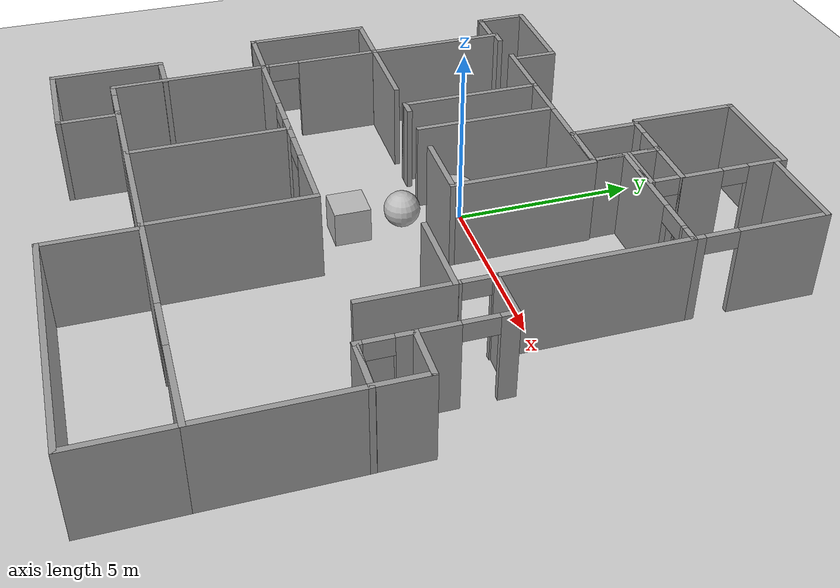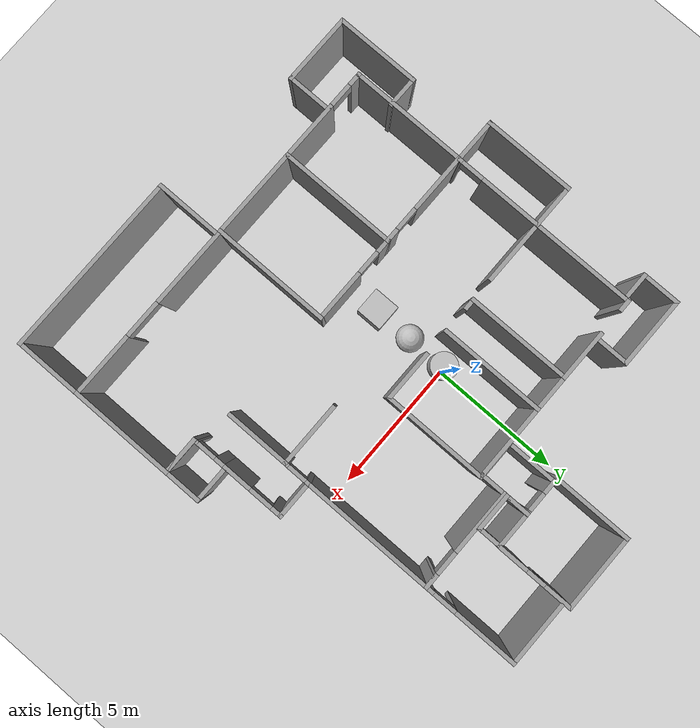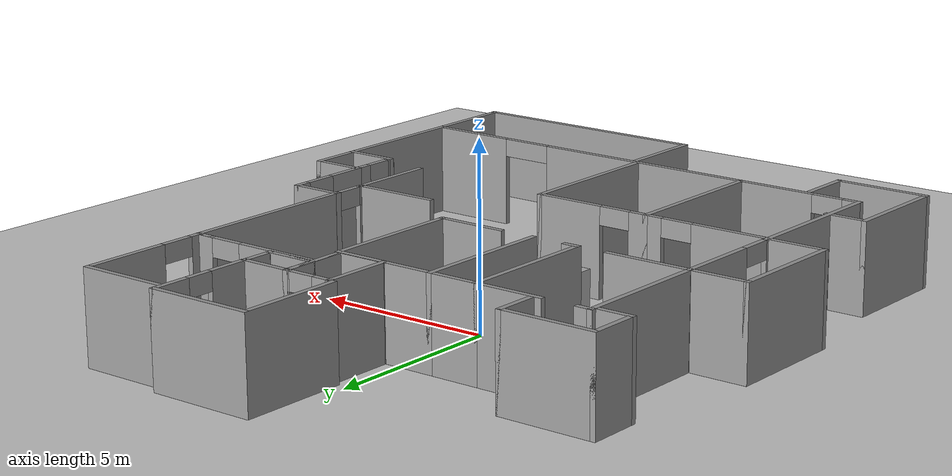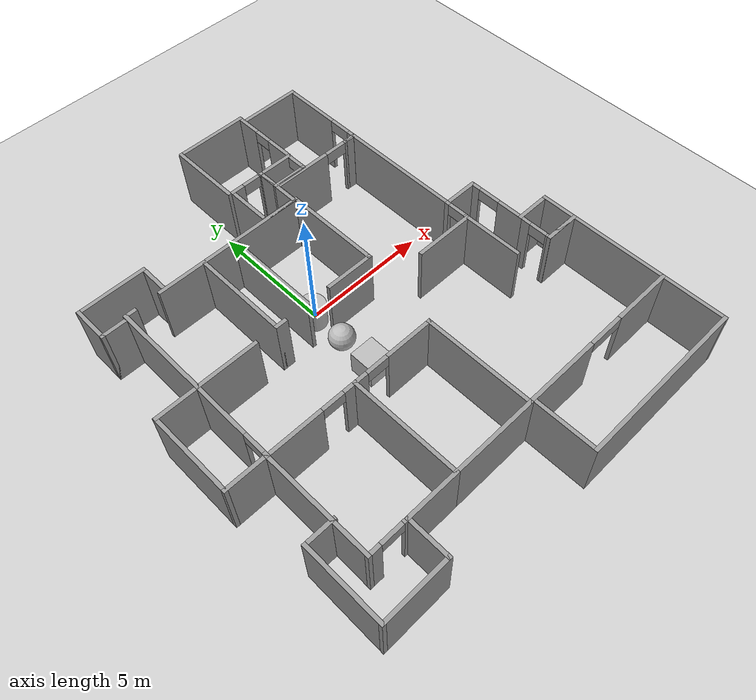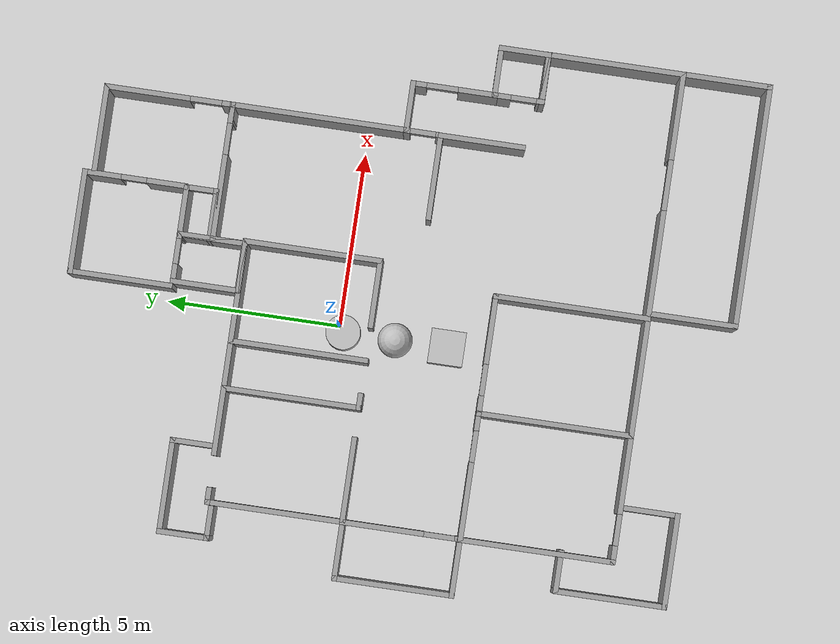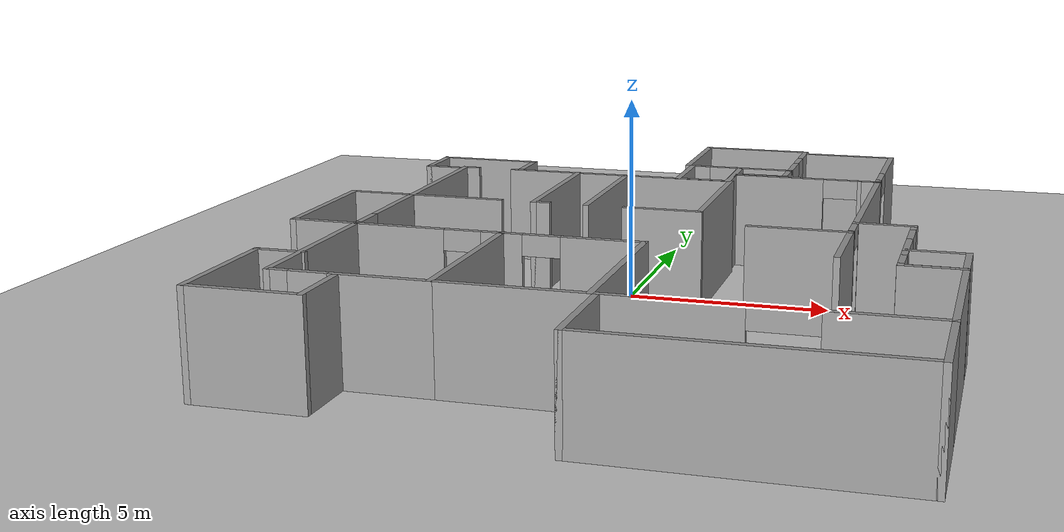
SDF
<sdf version="1.6">
 <world name="default">
  <light name="sun" type="directional">
   <pose>0 0 10 0 -0 0</pose>
   <diffuse>0.8 0.8 0.8 1</diffuse>
   <specular>0.1 0.1 0.1 1</specular>
   <attenuation>
    <range>1000</range>
    <constant>0.9</constant>
    <linear>0.01</linear>
    <quadratic>0.001</quadratic>
   </attenuation>
   <direction>-0.5 0.5 -1</direction>
  </light>
  <model name="ground_plane">
   <static>1</static>
   <link name="link">
    <collision name="collision">
     <geometry><plane><normal>0 0 1</normal><size>100 100</size></plane></geometry>
     <surface><friction><ode><mu>100</mu><mu2>50</mu2></ode></friction></surface>
    </collision>
    <visual name="visual">
     <cast_shadows>0</cast_shadows>
     <geometry><plane><normal>0 0 1</normal><size>100 100</size></plane></geometry>
     <material>
      <script><uri>file://media/materials/scripts/gazebo.material</uri><name>Gazebo/Grey</name></script>
     </material>
    </visual>
   </link>
  </model>
  <gravity>0 0 -9.8</gravity>
  <magnetic_field>6e-06 2.3e-05 -4.2e-05</magnetic_field>
  <atmosphere type="adiabatic"/>
  <physics name="default_physics" default="0" type="ode">
   <max_step_size>0.001</max_step_size>
   <real_time_factor>1</real_time_factor>
   <real_time_update_rate>1000</real_time_update_rate>
  </physics>
  <scene><ambient>0.4 0.4 0.4 1</ambient><background>0.7 0.7 0.7 1</background><shadows>1</shadows></scene>
  <spherical_coordinates>
   <surface_model>EARTH_WGS84</surface_model>
   <latitude_deg>0</latitude_deg>
   <longitude_deg>0</longitude_deg>
   <elevation>0</elevation>
   <heading_deg>0</heading_deg>
  </spherical_coordinates>
  <model name="cma_escritorio">
   <pose>-1.79682 1.02121 0 0 -0 0</pose>
   <link name="Wall_11">
    <collision name="Wall_11_Collision">
     <geometry><box><size>2 0.15 2.5</size></box></geometry>
     <pose>0 0 1.25 0 -0 0</pose>
    </collision>
    <visual name="Wall_11_Visual">
     <pose>0 0 1.25 0 -0 0</pose>
     <geometry><box><size>2 0.15 2.5</size></box></geometry>
     <material>
      <script><uri>file://media/materials/scripts/gazebo.material</uri><name>Gazebo/Grey</name></script>
      <ambient>1 1 1 1</ambient>
     </material>
    </visual>
    <pose>-1.4 1.93 0 0 -0 3.14159</pose>
   </link>
   <link name="Wall_2">
    <collision name="Wall_2_Collision">
     <geometry><box><size>4 0.15 2.5</size></box></geometry>
     <pose>0 0 1.25 0 -0 0</pose>
    </collision>
    <visual name="Wall_2_Visual">
     <pose>0 0 1.25 0 -0 0</pose>
     <geometry><box><size>4 0.15 2.5</size></box></geometry>
     <material>
      <script><uri>file://media/materials/scripts/gazebo.material</uri><name>Gazebo/Grey</name></script>
      <ambient>1 1 1 1</ambient>
     </material>
    </visual>
    <pose>0.875 0.005 0 0 -0 1.5708</pose>
   </link>
   <link name="Wall_25">
    <collision name="Wall_25_Collision">
     <geometry><box><size>2.5 0.15 2.5</size></box></geometry>
     <pose>0 0 1.25 0 -0 0</pose>
    </collision>
    <visual name="Wall_25_Visual">
     <pose>0 0 1.25 0 -0 0</pose>
     <geometry><box><size>2.5 0.15 2.5</size></box></geometry>
     <material>
      <script><uri>file://media/materials/scripts/gazebo.material</uri><name>Gazebo/Grey</name></script>
      <ambient>1 1 1 1</ambient>
     </material>
    </visual>
    <pose>-2.55 -1.93 0 0 -0 3.14159</pose>
   </link>
   <link name="Wall_26">
    <collision name="Wall_26_Collision">
     <geometry><box><size>4 0.15 2.5</size></box></geometry>
     <pose>0 0 1.25 0 -0 0</pose>
    </collision>
    <visual name="Wall_26_Visual">
     <pose>0 0 1.25 0 -0 0</pose>
     <geometry><box><size>4 0.15 2.5</size></box></geometry>
     <material>
      <script><uri>file://media/materials/scripts/gazebo.material</uri><name>Gazebo/Grey</name></script>
      <ambient>1 1 1 1</ambient>
     </material>
    </visual>
    <pose>-3.725 -0.005 0 0 -0 1.5708</pose>
   </link>
   <link name="Wall_27">
    <collision name="Wall_27_Collision">
     <geometry><box><size>0.5 0.15 2.5</size></box></geometry>
     <pose>0 0 1.25 0 -0 0</pose>
    </collision>
    <visual name="Wall_27_Visual">
     <pose>0 0 1.25 0 -0 0</pose>
     <geometry><box><size>0.5 0.15 2.5</size></box></geometry>
     <material>
      <script><uri>file://media/materials/scripts/gazebo.material</uri><name>Gazebo/Grey</name></script>
      <ambient>1 1 1 1</ambient>
     </material>
    </visual>
    <pose>-3.55 1.92 0 0 -0 0</pose>
   </link>
   <link name="Wall_3">
    <collision name="Wall_3_Collision">
     <geometry><box><size>3 0.15 2.5</size></box></geometry>
     <pose>0 0 1.25 0 -0 0</pose>
    </collision>
    <visual name="Wall_3_Visual">
     <pose>0 0 1.25 0 -0 0</pose>
     <geometry><box><size>3 0.15 2.5</size></box></geometry>
     <material>
      <script><uri>file://media/materials/scripts/gazebo.material</uri><name>Gazebo/Grey</name></script>
      <ambient>1 1 1 1</ambient>
     </material>
    </visual>
    <pose>2.3 1.93 0 0 -0 0</pose>
   </link>
   <link name="Wall_4">
    <collision name="Wall_4_Collision">
     <geometry><box><size>4 0.15 2.5</size></box></geometry>
     <pose>0 0 1.25 0 -0 0</pose>
    </collision>
    <visual name="Wall_4_Visual">
     <pose>0 0 1.25 0 -0 0</pose>
     <geometry><box><size>4 0.15 2.5</size></box></geometry>
     <material>
      <script><uri>file://media/materials/scripts/gazebo.material</uri><name>Gazebo/Grey</name></script>
      <ambient>1 1 1 1</ambient>
     </material>
    </visual>
    <pose>3.725 0.005 0 0 0 -1.5708</pose>
   </link>
   <link name="Wall_5">
    <collision name="Wall_5_Collision">
     <geometry><box><size>2 0.15 2.5</size></box></geometry>
     <pose>0 0 1.25 0 -0 0</pose>
    </collision>
    <visual name="Wall_5_Visual">
     <pose>0 0 1.25 0 -0 0</pose>
     <geometry><box><size>2 0.15 2.5</size></box></geometry>
     <material>
      <script><uri>file://media/materials/scripts/gazebo.material</uri><name>Gazebo/Grey</name></script>
      <ambient>1 1 1 1</ambient>
     </material>
    </visual>
    <pose>2.8 -1.92 0 0 -0 3.14159</pose>
   </link>
   <link name="Wall_7">
    <collision name="Wall_7_Collision">
     <geometry><box><size>1.5 0.15 2.5</size></box></geometry>
     <pose>0 0 1.25 0 -0 0</pose>
    </collision>
    <visual name="Wall_7_Visual">
     <pose>0 0 1.25 0 -0 0</pose>
     <geometry><box><size>1.5 0.15 2.5</size></box></geometry>
     <material>
      <script><uri>file://media/materials/scripts/gazebo.material</uri><name>Gazebo/Grey</name></script>
      <ambient>1 1 1 1</ambient>
     </material>
    </visual>
    <pose>0.2 1.93 0 0 -0 3.14159</pose>
   </link>
   <link name="Wall_8">
    <collision name="Wall_8_Collision">
     <geometry><box><size>4 0.15 2.5</size></box></geometry>
     <pose>0 0 1.25 0 -0 0</pose>
    </collision>
    <visual name="Wall_8_Visual">
     <pose>0 0 1.25 0 -0 0</pose>
     <geometry><box><size>4 0.15 2.5</size></box></geometry>
     <material>
      <script><uri>file://media/materials/scripts/gazebo.material</uri><name>Gazebo/Grey</name></script>
      <ambient>1 1 1 1</ambient>
     </material>
    </visual>
    <pose>-0.475 0.005 0 0 0 -1.5708</pose>
   </link>
   <link name="Wall_9">
    <collision name="Wall_9_Collision">
     <geometry><box><size>0.5 0.15 2.5</size></box></geometry>
     <pose>0 0 1.25 0 -0 0</pose>
    </collision>
    <visual name="Wall_9_Visual">
     <pose>0 0 1.25 0 -0 0</pose>
     <geometry><box><size>0.5 0.15 2.5</size></box></geometry>
     <material>
      <script><uri>file://media/materials/scripts/gazebo.material</uri><name>Gazebo/Grey</name></script>
      <ambient>1 1 1 1</ambient>
     </material>
    </visual>
    <pose>-0.3 -1.92 0 0 -0 0</pose>
   </link>
   <static>1</static>
  </model>
  <model name="cma_banheiro">
   <pose>-5.22928 3.4871 0 0 -0 0</pose>
   <link name="Wall_0">
    <collision name="Wall_0_Collision">
     <geometry><box><size>1 0.15 2.5</size></box></geometry>
     <pose>0 0 1.25 0 -0 0</pose>
    </collision>
    <visual name="Wall_0_Visual">
     <pose>0 0 1.25 0 -0 0</pose>
     <geometry><box><size>1 0.15 2.5</size></box></geometry>
     <material>
      <script><uri>file://media/materials/scripts/gazebo.material</uri><name>Gazebo/Grey</name></script>
      <ambient>1 1 1 1</ambient>
     </material>
    </visual>
    <pose>-0.875 -0.675 0 0 -0 3.14159</pose>
   </link>
   <link name="Wall_1">
    <collision name="Wall_1_Collision">
     <geometry><box><size>1.5 0.15 2.5</size></box></geometry>
     <pose>0 0 1.25 0 -0 0</pose>
    </collision>
    <visual name="Wall_1_Visual">
     <pose>0 0 1.25 0 -0 0</pose>
     <geometry><box><size>1.5 0.15 2.5</size></box></geometry>
     <material>
      <script><uri>file://media/materials/scripts/gazebo.material</uri><name>Gazebo/Grey</name></script>
      <ambient>1 1 1 1</ambient>
     </material>
    </visual>
    <pose>-1.3 0 0 0 -0 1.5708</pose>
   </link>
   <link name="Wall_2">
    <collision name="Wall_2_Collision">
     <geometry><box><size>2.75 0.15 2.5</size></box></geometry>
     <pose>0 0 1.25 0 -0 0</pose>
    </collision>
    <visual name="Wall_2_Visual">
     <pose>0 0 1.25 0 -0 0</pose>
     <geometry><box><size>2.75 0.15 2.5</size></box></geometry>
     <material>
      <script><uri>file://media/materials/scripts/gazebo.material</uri><name>Gazebo/Grey</name></script>
      <ambient>1 1 1 1</ambient>
     </material>
    </visual>
    <pose>0 0.675 0 0 -0 0</pose>
   </link>
   <link name="Wall_4">
    <collision name="Wall_4_Collision">
     <geometry><box><size>1.25 0.15 2.5</size></box></geometry>
     <pose>0 0 1.25 0 -0 0</pose>
    </collision>
    <visual name="Wall_4_Visual">
     <pose>0 0 1.25 0 -0 0</pose>
     <geometry><box><size>1.25 0.15 2.5</size></box></geometry>
     <material>
      <script><uri>file://media/materials/scripts/gazebo.material</uri><name>Gazebo/Grey</name></script>
      <ambient>1 1 1 1</ambient>
     </material>
    </visual>
    <pose>1.3 0.125 0 0 0 -1.5708</pose>
   </link>
   <static>1</static>
  </model>
  <model name="cma_varanda1">
   <pose>-6.32518 -2.59313 0 0 -0 0</pose>
   <link name="Wall_0">
    <pose>0.8 0 0 0 0 -1.5708</pose>
    <visual name="Wall_0_Visual_0">
     <pose>-0.5525 0 1.25 0 -0 0</pose>
     <geometry><box><size>2.395 0.15 2.5</size></box></geometry>
     <material>
      <script><uri>file://media/materials/scripts/gazebo.material</uri><name>Gazebo/Grey</name></script>
      <ambient>1 1 1 1</ambient>
     </material>
    </visual>
    <collision name="Wall_0_Collision_0">
     <geometry><box><size>2.395 0.15 2.5</size></box></geometry>
     <pose>-0.5525 0 1.25 0 -0 0</pose>
    </collision>
    <visual name="Wall_0_Visual_1">
     <pose>1.6375 0 1.25 0 -0 0</pose>
     <geometry><box><size>0.225 0.15 2.5</size></box></geometry>
     <material>
      <script><uri>file://media/materials/scripts/gazebo.material</uri><name>Gazebo/Grey</name></script>
      <ambient>1 1 1 1</ambient>
     </material>
    </visual>
    <collision name="Wall_0_Collision_1">
     <geometry><box><size>0.225 0.15 2.5</size></box></geometry>
     <pose>1.6375 0 1.25 0 -0 0</pose>
    </collision>
    <visual name="Wall_0_Visual_2">
     <pose>1.085 0 2.25 0 -0 0</pose>
     <geometry><box><size>0.88 0.15 0.5</size></box></geometry>
     <material>
      <script><uri>file://media/materials/scripts/gazebo.material</uri><name>Gazebo/Grey</name></script>
      <ambient>1 1 1 1</ambient>
     </material>
    </visual>
    <collision name="Wall_0_Collision_2">
     <geometry><box><size>0.88 0.15 0.5</size></box></geometry>
     <pose>1.085 0 2.25 0 -0 0</pose>
    </collision>
   </link>
   <link name="Wall_1">
    <collision name="Wall_1_Collision">
     <geometry><box><size>1.75 0.15 2.5</size></box></geometry>
     <pose>0 0 1.25 0 -0 0</pose>
    </collision>
    <visual name="Wall_1_Visual">
     <pose>0 0 1.25 0 -0 0</pose>
     <geometry><box><size>1.75 0.15 2.5</size></box></geometry>
     <material>
      <script><uri>file://media/materials/scripts/gazebo.material</uri><name>Gazebo/Grey</name></script>
      <ambient>1 1 1 1</ambient>
     </material>
    </visual>
    <pose>0 -1.675 0 0 -0 3.14159</pose>
   </link>
   <link name="Wall_2">
    <collision name="Wall_2_Collision">
     <geometry><box><size>3.5 0.15 2.5</size></box></geometry>
     <pose>0 0 1.25 0 -0 0</pose>
    </collision>
    <visual name="Wall_2_Visual">
     <pose>0 0 1.25 0 -0 0</pose>
     <geometry><box><size>3.5 0.15 2.5</size></box></geometry>
     <material>
      <script><uri>file://media/materials/scripts/gazebo.material</uri><name>Gazebo/Grey</name></script>
      <ambient>1 1 1 1</ambient>
     </material>
    </visual>
    <pose>-0.8 0 0 0 -0 1.5708</pose>
   </link>
   <link name="Wall_3">
    <collision name="Wall_3_Collision">
     <geometry><box><size>1.75 0.15 2.5</size></box></geometry>
     <pose>0 0 1.25 0 -0 0</pose>
    </collision>
    <visual name="Wall_3_Visual">
     <pose>0 0 1.25 0 -0 0</pose>
     <geometry><box><size>1.75 0.15 2.5</size></box></geometry>
     <material>
      <script><uri>file://media/materials/scripts/gazebo.material</uri><name>Gazebo/Grey</name></script>
      <ambient>1 1 1 1</ambient>
     </material>
    </visual>
    <pose>0 1.675 0 0 -0 0</pose>
   </link>
   <static>1</static>
  </model>
  <model name="cma_quartos">
   <pose>-2.58169 -7.26456 0 0 -0 0</pose>
   <link name="Wall_0">
    <collision name="Wall_0_Collision">
     <geometry><box><size>4.5 0.15 2.5</size></box></geometry>
     <pose>0 0 1.25 0 -0 0</pose>
    </collision>
    <visual name="Wall_0_Visual">
     <pose>0 0 1.25 0 -0 0</pose>
     <geometry><box><size>4.5 0.15 2.5</size></box></geometry>
     <material>
      <script><uri>file://media/materials/scripts/gazebo.material</uri><name>Gazebo/Grey</name></script>
      <ambient>1 1 1 1</ambient>
     </material>
    </visual>
    <pose>0.645 0.81 0 0 0 -1.5708</pose>
   </link>
   <link name="Wall_1">
    <pose>-1.155 -1.365 0 0 -0 3.14159</pose>
    <visual name="Wall_1_Visual_0">
     <pose>-0.7225 0 1.25 0 -0 0</pose>
     <geometry><box><size>2.305 0.15 2.5</size></box></geometry>
     <material>
      <script><uri>file://media/materials/scripts/gazebo.material</uri><name>Gazebo/Grey</name></script>
      <ambient>1 1 1 1</ambient>
     </material>
    </visual>
    <collision name="Wall_1_Collision_0">
     <geometry><box><size>2.305 0.15 2.5</size></box></geometry>
     <pose>-0.7225 0 1.25 0 -0 0</pose>
    </collision>
    <visual name="Wall_1_Visual_1">
     <pose>1.6025 0 1.25 0 -0 0</pose>
     <geometry><box><size>0.545 0.15 2.5</size></box></geometry>
     <material>
      <script><uri>file://media/materials/scripts/gazebo.material</uri><name>Gazebo/Grey</name></script>
      <ambient>1 1 1 1</ambient>
     </material>
    </visual>
    <collision name="Wall_1_Collision_1">
     <geometry><box><size>0.545 0.15 2.5</size></box></geometry>
     <pose>1.6025 0 1.25 0 -0 0</pose>
    </collision>
    <visual name="Wall_1_Visual_2">
     <pose>0.88 0 2.25 0 -0 0</pose>
     <geometry><box><size>0.9 0.15 0.5</size></box></geometry>
     <material>
      <script><uri>file://media/materials/scripts/gazebo.material</uri><name>Gazebo/Grey</name></script>
      <ambient>1 1 1 1</ambient>
     </material>
    </visual>
    <collision name="Wall_1_Collision_2">
     <geometry><box><size>0.9 0.15 0.5</size></box></geometry>
     <pose>0.88 0 2.25 0 -0 0</pose>
    </collision>
   </link>
   <link name="Wall_10">
    <collision name="Wall_10_Collision">
     <geometry><box><size>1.75 0.15 2.5</size></box></geometry>
     <pose>0 0 1.25 0 -0 0</pose>
    </collision>
    <visual name="Wall_10_Visual">
     <pose>0 0 1.25 0 -0 0</pose>
     <geometry><box><size>1.75 0.15 2.5</size></box></geometry>
     <material>
      <script><uri>file://media/materials/scripts/gazebo.material</uri><name>Gazebo/Grey</name></script>
      <ambient>1 1 1 1</ambient>
     </material>
    </visual>
    <pose>-1.395 -2.185 0 0 0 -1.5708</pose>
   </link>
   <link name="Wall_11">
    <collision name="Wall_11_Collision">
     <geometry><box><size>2.75 0.15 2.5</size></box></geometry>
     <pose>0 0 1.25 0 -0 0</pose>
    </collision>
    <visual name="Wall_11_Visual">
     <pose>0 0 1.25 0 -0 0</pose>
     <geometry><box><size>2.75 0.15 2.5</size></box></geometry>
     <material>
      <script><uri>file://media/materials/scripts/gazebo.material</uri><name>Gazebo/Grey</name></script>
      <ambient>1 1 1 1</ambient>
     </material>
    </visual>
    <pose>-2.695 -2.985 0 0 -0 3.14159</pose>
   </link>
   <link name="Wall_12">
    <collision name="Wall_12_Collision">
     <geometry><box><size>3.25 0.15 2.5</size></box></geometry>
     <pose>0 0 1.25 0 -0 0</pose>
    </collision>
    <visual name="Wall_12_Visual">
     <pose>0 0 1.25 0 -0 0</pose>
     <geometry><box><size>3.25 0.15 2.5</size></box></geometry>
     <material>
      <script><uri>file://media/materials/scripts/gazebo.material</uri><name>Gazebo/Grey</name></script>
      <ambient>1 1 1 1</ambient>
     </material>
    </visual>
    <pose>-3.995 -1.435 0 0 -0 1.5708</pose>
   </link>
   <link name="Wall_13">
    <collision name="Wall_13_Collision">
     <geometry><box><size>1.25 0.15 2.5</size></box></geometry>
     <pose>0 0 1.25 0 -0 0</pose>
    </collision>
    <visual name="Wall_13_Visual">
     <pose>0 0 1.25 0 -0 0</pose>
     <geometry><box><size>1.25 0.15 2.5</size></box></geometry>
     <material>
      <script><uri>file://media/materials/scripts/gazebo.material</uri><name>Gazebo/Grey</name></script>
      <ambient>1 1 1 1</ambient>
     </material>
    </visual>
    <pose>-3.445 0.115 0 0 -0 0</pose>
   </link>
   <link name="Wall_2">
    <collision name="Wall_2_Collision">
     <geometry><box><size>4.5 0.15 2.5</size></box></geometry>
     <pose>0 0 1.25 0 -0 0</pose>
    </collision>
    <visual name="Wall_2_Visual">
     <pose>0 0 1.25 0 -0 0</pose>
     <geometry><box><size>4.5 0.15 2.5</size></box></geometry>
     <material>
      <script><uri>file://media/materials/scripts/gazebo.material</uri><name>Gazebo/Grey</name></script>
      <ambient>1 1 1 1</ambient>
     </material>
    </visual>
    <pose>-2.955 0.81 0 0 -0 1.5708</pose>
   </link>
   <link name="Wall_3">
    <pose>-1.155 2.985 0 0 -0 0</pose>
    <visual name="Wall_3_Visual_0">
     <pose>-0.7325 0 1.25 0 -0 0</pose>
     <geometry><box><size>2.285 0.15 2.5</size></box></geometry>
     <material>
      <script><uri>file://media/materials/scripts/gazebo.material</uri><name>Gazebo/Grey</name></script>
      <ambient>1 1 1 1</ambient>
     </material>
    </visual>
    <collision name="Wall_3_Collision_0">
     <geometry><box><size>2.285 0.15 2.5</size></box></geometry>
     <pose>-0.7325 0 1.25 0 -0 0</pose>
    </collision>
    <visual name="Wall_3_Visual_1">
     <pose>1.5925 0 1.25 0 -0 0</pose>
     <geometry><box><size>0.565 0.15 2.5</size></box></geometry>
     <material>
      <script><uri>file://media/materials/scripts/gazebo.material</uri><name>Gazebo/Grey</name></script>
      <ambient>1 1 1 1</ambient>
     </material>
    </visual>
    <collision name="Wall_3_Collision_1">
     <geometry><box><size>0.565 0.15 2.5</size></box></geometry>
     <pose>1.5925 0 1.25 0 -0 0</pose>
    </collision>
    <visual name="Wall_3_Visual_2">
     <pose>0.86 0 2.25 0 -0 0</pose>
     <geometry><box><size>0.9 0.15 0.5</size></box></geometry>
     <material>
      <script><uri>file://media/materials/scripts/gazebo.material</uri><name>Gazebo/Grey</name></script>
      <ambient>1 1 1 1</ambient>
     </material>
    </visual>
    <collision name="Wall_3_Collision_2">
     <geometry><box><size>0.9 0.15 0.5</size></box></geometry>
     <pose>0.86 0 2.25 0 -0 0</pose>
    </collision>
   </link>
   <link name="Wall_6">
    <pose>2.32 2.985 0 0 -0 0</pose>
    <visual name="Wall_6_Visual_0">
     <pose>-1.4575 0 1.25 0 -0 0</pose>
     <geometry><box><size>0.585 0.15 2.5</size></box></geometry>
     <material>
      <script><uri>file://media/materials/scripts/gazebo.material</uri><name>Gazebo/Grey</name></script>
      <ambient>1 1 1 1</ambient>
     </material>
    </visual>
    <collision name="Wall_6_Collision_0">
     <geometry><box><size>0.585 0.15 2.5</size></box></geometry>
     <pose>-1.4575 0 1.25 0 -0 0</pose>
    </collision>
    <visual name="Wall_6_Visual_1">
     <pose>0.7425 0 1.25 0 -0 0</pose>
     <geometry><box><size>2.015 0.15 2.5</size></box></geometry>
     <material>
      <script><uri>file://media/materials/scripts/gazebo.material</uri><name>Gazebo/Grey</name></script>
      <ambient>1 1 1 1</ambient>
     </material>
    </visual>
    <collision name="Wall_6_Collision_1">
     <geometry><box><size>2.015 0.15 2.5</size></box></geometry>
     <pose>0.7425 0 1.25 0 -0 0</pose>
    </collision>
    <visual name="Wall_6_Visual_2">
     <pose>-0.715 0 2.25 0 -0 0</pose>
     <geometry><box><size>0.9 0.15 0.5</size></box></geometry>
     <material>
      <script><uri>file://media/materials/scripts/gazebo.material</uri><name>Gazebo/Grey</name></script>
      <ambient>1 1 1 1</ambient>
     </material>
    </visual>
    <collision name="Wall_6_Collision_2">
     <geometry><box><size>0.9 0.15 0.5</size></box></geometry>
     <pose>-0.715 0 2.25 0 -0 0</pose>
    </collision>
   </link>
   <link name="Wall_7">
    <collision name="Wall_7_Collision">
     <geometry><box><size>4.5 0.15 2.5</size></box></geometry>
     <pose>0 0 1.25 0 -0 0</pose>
    </collision>
    <visual name="Wall_7_Visual">
     <pose>0 0 1.25 0 -0 0</pose>
     <geometry><box><size>4.5 0.15 2.5</size></box></geometry>
     <material>
      <script><uri>file://media/materials/scripts/gazebo.material</uri><name>Gazebo/Grey</name></script>
      <ambient>1 1 1 1</ambient>
     </material>
    </visual>
    <pose>3.995 0.81 0 0 0 -1.5708</pose>
   </link>
   <link name="Wall_8">
    <collision name="Wall_8_Collision">
     <geometry><box><size>3.5 0.15 2.5</size></box></geometry>
     <pose>0 0 1.25 0 -0 0</pose>
    </collision>
    <visual name="Wall_8_Visual">
     <pose>0 0 1.25 0 -0 0</pose>
     <geometry><box><size>3.5 0.15 2.5</size></box></geometry>
     <material>
      <script><uri>file://media/materials/scripts/gazebo.material</uri><name>Gazebo/Grey</name></script>
      <ambient>1 1 1 1</ambient>
     </material>
    </visual>
    <pose>2.32 -1.365 0 0 -0 3.14159</pose>
   </link>
   <static>1</static>
  </model>
  <model name="cma_parede_L">
   <pose>4.97628 -6.69992 0 0 -0 0</pose>
   <link name="Wall_0">
    <pose>0 -1.925 0 0 -0 0</pose>
    <visual name="Wall_0_Visual_0">
     <pose>-1.985 0 1.25 0 -0 0</pose>
     <geometry><box><size>3.03 0.15 2.5</size></box></geometry>
     <material>
      <script><uri>file://media/materials/scripts/gazebo.material</uri><name>Gazebo/Grey</name></script>
      <ambient>1 1 1 1</ambient>
     </material>
    </visual>
    <collision name="Wall_0_Collision_0">
     <geometry><box><size>3.03 0.15 2.5</size></box></geometry>
     <pose>-1.985 0 1.25 0 -0 0</pose>
    </collision>
    <visual name="Wall_0_Visual_1">
     <pose>2.24 0 1.25 0 -0 0</pose>
     <geometry><box><size>2.52 0.15 2.5</size></box></geometry>
     <material>
      <script><uri>file://media/materials/scripts/gazebo.material</uri><name>Gazebo/Grey</name></script>
      <ambient>1 1 1 1</ambient>
     </material>
    </visual>
    <collision name="Wall_0_Collision_1">
     <geometry><box><size>2.52 0.15 2.5</size></box></geometry>
     <pose>2.24 0 1.25 0 -0 0</pose>
    </collision>
    <visual name="Wall_0_Visual_2">
     <pose>0.255 0 2.25 0 -0 0</pose>
     <geometry><box><size>1.45 0.15 0.5</size></box></geometry>
     <material>
      <script><uri>file://media/materials/scripts/gazebo.material</uri><name>Gazebo/Grey</name></script>
      <ambient>1 1 1 1</ambient>
     </material>
    </visual>
    <collision name="Wall_0_Collision_2">
     <geometry><box><size>1.45 0.15 0.5</size></box></geometry>
     <pose>0.255 0 2.25 0 -0 0</pose>
    </collision>
   </link>
   <link name="Wall_1">
    <collision name="Wall_1_Collision">
     <geometry><box><size>4 0.15 2.5</size></box></geometry>
     <pose>0 0 1.25 0 -0 0</pose>
    </collision>
    <visual name="Wall_1_Visual">
     <pose>0 0 1.25 0 -0 0</pose>
     <geometry><box><size>4 0.15 2.5</size></box></geometry>
     <material>
      <script><uri>file://media/materials/scripts/gazebo.material</uri><name>Gazebo/Grey</name></script>
      <ambient>1 1 1 1</ambient>
     </material>
    </visual>
    <pose>3.425 0 0 0 -0 1.5708</pose>
   </link>
   <link name="Wall_2">
    <collision name="Wall_2_Collision">
     <geometry><box><size>1.5 0.15 2.5</size></box></geometry>
     <pose>0 0 1.25 0 -0 0</pose>
    </collision>
    <visual name="Wall_2_Visual">
     <pose>0 0 1.25 0 -0 0</pose>
     <geometry><box><size>1.5 0.15 2.5</size></box></geometry>
     <material>
      <script><uri>file://media/materials/scripts/gazebo.material</uri><name>Gazebo/Grey</name></script>
      <ambient>1 1 1 1</ambient>
     </material>
    </visual>
    <pose>2.75 1.925 0 0 -0 3.14159</pose>
   </link>
   <static>1</static>
  </model>
  <model name="cma_lavabo">
   <pose>7.72297 -4.09302 0 0 -0 0</pose>
   <link name="Wall_4">
    <pose>-0.675 0 0 0 -0 1.5708</pose>
    <visual name="Wall_4_Visual_0">
     <pose>-0.635 0 1.25 0 -0 0</pose>
     <geometry><box><size>0.23 0.15 2.5</size></box></geometry>
     <material>
      <script><uri>file://media/materials/scripts/gazebo.material</uri><name>Gazebo/Grey</name></script>
      <ambient>1 1 1 1</ambient>
     </material>
    </visual>
    <collision name="Wall_4_Collision_0">
     <geometry><box><size>0.23 0.15 2.5</size></box></geometry>
     <pose>-0.635 0 1.25 0 -0 0</pose>
    </collision>
    <visual name="Wall_4_Visual_1">
     <pose>0.48 0 1.25 0 -0 0</pose>
     <geometry><box><size>0.54 0.15 2.5</size></box></geometry>
     <material>
      <script><uri>file://media/materials/scripts/gazebo.material</uri><name>Gazebo/Grey</name></script>
      <ambient>1 1 1 1</ambient>
     </material>
    </visual>
    <collision name="Wall_4_Collision_1">
     <geometry><box><size>0.54 0.15 2.5</size></box></geometry>
     <pose>0.48 0 1.25 0 -0 0</pose>
    </collision>
    <visual name="Wall_4_Visual_2">
     <pose>-0.155 0 2.25 0 -0 0</pose>
     <geometry><box><size>0.73 0.15 0.5</size></box></geometry>
     <material>
      <script><uri>file://media/materials/scripts/gazebo.material</uri><name>Gazebo/Grey</name></script>
      <ambient>1 1 1 1</ambient>
     </material>
    </visual>
    <collision name="Wall_4_Collision_2">
     <geometry><box><size>0.73 0.15 0.5</size></box></geometry>
     <pose>-0.155 0 2.25 0 -0 0</pose>
    </collision>
   </link>
   <link name="Wall_5">
    <collision name="Wall_5_Collision">
     <geometry><box><size>1.5 0.15 2.5</size></box></geometry>
     <pose>0 0 1.25 0 -0 0</pose>
    </collision>
    <visual name="Wall_5_Visual">
     <pose>0 0 1.25 0 -0 0</pose>
     <geometry><box><size>1.5 0.15 2.5</size></box></geometry>
     <material>
      <script><uri>file://media/materials/scripts/gazebo.material</uri><name>Gazebo/Grey</name></script>
      <ambient>1 1 1 1</ambient>
     </material>
    </visual>
    <pose>0 0.675 0 0 -0 0</pose>
   </link>
   <link name="Wall_6">
    <collision name="Wall_6_Collision">
     <geometry><box><size>1.5 0.15 2.5</size></box></geometry>
     <pose>0 0 1.25 0 -0 0</pose>
    </collision>
    <visual name="Wall_6_Visual">
     <pose>0 0 1.25 0 -0 0</pose>
     <geometry><box><size>1.5 0.15 2.5</size></box></geometry>
     <material>
      <script><uri>file://media/materials/scripts/gazebo.material</uri><name>Gazebo/Grey</name></script>
      <ambient>1 1 1 1</ambient>
     </material>
    </visual>
    <pose>0.675 0 0 0 0 -1.5708</pose>
   </link>
   <link name="Wall_7">
    <collision name="Wall_7_Collision">
     <geometry><box><size>1.5 0.15 2.5</size></box></geometry>
     <pose>0 0 1.25 0 -0 0</pose>
    </collision>
    <visual name="Wall_7_Visual">
     <pose>0 0 1.25 0 -0 0</pose>
     <geometry><box><size>1.5 0.15 2.5</size></box></geometry>
     <material>
      <script><uri>file://media/materials/scripts/gazebo.material</uri><name>Gazebo/Grey</name></script>
      <ambient>1 1 1 1</ambient>
     </material>
    </visual>
    <pose>0 -0.675 0 0 -0 3.14159</pose>
   </link>
   <static>1</static>
  </model>
  <model name="cma_L2">
   <pose>4.51683 -3.24587 0 0 -0 0</pose>
   <link name="Wall_10">
    <collision name="Wall_10_Collision">
     <geometry><box><size>2.5 0.15 2.5</size></box></geometry>
     <pose>0 0 1.25 0 -0 0</pose>
    </collision>
    <visual name="Wall_10_Visual">
     <pose>0 0 1.25 0 -0 0</pose>
     <geometry><box><size>2.5 0.15 2.5</size></box></geometry>
     <material>
      <script><uri>file://media/materials/scripts/gazebo.material</uri><name>Gazebo/Grey</name></script>
      <ambient>1 1 1 1</ambient>
     </material>
    </visual>
    <pose>1.175 0 0 0 0 -1.5708</pose>
   </link>
   <link name="Wall_9">
    <collision name="Wall_9_Collision">
     <geometry><box><size>2.5 0.15 2.5</size></box></geometry>
     <pose>0 0 1.25 0 -0 0</pose>
    </collision>
    <visual name="Wall_9_Visual">
     <pose>0 0 1.25 0 -0 0</pose>
     <geometry><box><size>2.5 0.15 2.5</size></box></geometry>
     <material>
      <script><uri>file://media/materials/scripts/gazebo.material</uri><name>Gazebo/Grey</name></script>
      <ambient>1 1 1 1</ambient>
     </material>
    </visual>
    <pose>0 1.175 0 0 -0 0</pose>
   </link>
   <static>1</static>
  </model>
  <model name="cma_L3">
   <pose>6.37221 -2.26022 0 0 -0 0</pose>
   <link name="Wall_12">
    <pose>-0.675 0.75 0 0 -0 1.5708</pose>
    <visual name="Wall_12_Visual_0">
     <pose>-0.46 0 1.25 0 -0 0</pose>
     <geometry><box><size>0.08 0.15 2.5</size></box></geometry>
     <material>
      <script><uri>file://media/materials/scripts/gazebo.material</uri><name>Gazebo/Grey</name></script>
      <ambient>1 1 1 1</ambient>
     </material>
    </visual>
    <collision name="Wall_12_Collision_0">
     <geometry><box><size>0.08 0.15 2.5</size></box></geometry>
     <pose>-0.46 0 1.25 0 -0 0</pose>
    </collision>
    <visual name="Wall_12_Visual_1">
     <pose>0.405 0 1.25 0 -0 0</pose>
     <geometry><box><size>0.19 0.15 2.5</size></box></geometry>
     <material>
      <script><uri>file://media/materials/scripts/gazebo.material</uri><name>Gazebo/Grey</name></script>
      <ambient>1 1 1 1</ambient>
     </material>
    </visual>
    <collision name="Wall_12_Collision_1">
     <geometry><box><size>0.19 0.15 2.5</size></box></geometry>
     <pose>0.405 0 1.25 0 -0 0</pose>
    </collision>
    <visual name="Wall_12_Visual_2">
     <pose>-0.055 0 2.25 0 -0 0</pose>
     <geometry><box><size>0.73 0.15 0.5</size></box></geometry>
     <material>
      <script><uri>file://media/materials/scripts/gazebo.material</uri><name>Gazebo/Grey</name></script>
      <ambient>1 1 1 1</ambient>
     </material>
    </visual>
    <collision name="Wall_12_Collision_2">
     <geometry><box><size>0.73 0.15 0.5</size></box></geometry>
     <pose>-0.055 0 2.25 0 -0 0</pose>
    </collision>
   </link>
   <link name="Wall_13">
    <collision name="Wall_13_Collision">
     <geometry><box><size>1.5 0.15 2.5</size></box></geometry>
     <pose>0 0 1.25 0 -0 0</pose>
    </collision>
    <visual name="Wall_13_Visual">
     <pose>0 0 1.25 0 -0 0</pose>
     <geometry><box><size>1.5 0.15 2.5</size></box></geometry>
     <material>
      <script><uri>file://media/materials/scripts/gazebo.material</uri><name>Gazebo/Grey</name></script>
      <ambient>1 1 1 1</ambient>
     </material>
    </visual>
    <pose>0 1.175 0 0 -0 0</pose>
   </link>
   <link name="Wall_14">
    <pose>0.675 0 0 0 0 -1.5708</pose>
    <visual name="Wall_14_Visual_0">
     <pose>-1.0175 0 1.25 0 -0 0</pose>
     <geometry><box><size>0.465 0.15 2.5</size></box></geometry>
     <material>
      <script><uri>file://media/materials/scripts/gazebo.material</uri><name>Gazebo/Grey</name></script>
      <ambient>1 1 1 1</ambient>
     </material>
    </visual>
    <collision name="Wall_14_Collision_0">
     <geometry><box><size>0.465 0.15 2.5</size></box></geometry>
     <pose>-1.0175 0 1.25 0 -0 0</pose>
    </collision>
    <visual name="Wall_14_Visual_1">
     <pose>0.6825 0 1.25 0 -0 0</pose>
     <geometry><box><size>1.135 0.15 2.5</size></box></geometry>
     <material>
      <script><uri>file://media/materials/scripts/gazebo.material</uri><name>Gazebo/Grey</name></script>
      <ambient>1 1 1 1</ambient>
     </material>
    </visual>
    <collision name="Wall_14_Collision_1">
     <geometry><box><size>1.135 0.15 2.5</size></box></geometry>
     <pose>0.6825 0 1.25 0 -0 0</pose>
    </collision>
    <visual name="Wall_14_Visual_2">
     <pose>-0.335 0 2.25 0 -0 0</pose>
     <geometry><box><size>0.9 0.15 0.5</size></box></geometry>
     <material>
      <script><uri>file://media/materials/scripts/gazebo.material</uri><name>Gazebo/Grey</name></script>
      <ambient>1 1 1 1</ambient>
     </material>
    </visual>
    <collision name="Wall_14_Collision_2">
     <geometry><box><size>0.9 0.15 0.5</size></box></geometry>
     <pose>-0.335 0 2.25 0 -0 0</pose>
    </collision>
   </link>
   <static>1</static>
  </model>
  <model name="cma_U">
   <pose>4.97895 -9.92408 0 0 -0 0</pose>
   <link name="Wall_16">
    <collision name="Wall_16_Collision">
     <geometry><box><size>2.5 0.15 2.5</size></box></geometry>
     <pose>0 0 1.25 0 -0 0</pose>
    </collision>
    <visual name="Wall_16_Visual">
     <pose>0 0 1.25 0 -0 0</pose>
     <geometry><box><size>2.5 0.15 2.5</size></box></geometry>
     <material>
      <script><uri>file://media/materials/scripts/gazebo.material</uri><name>Gazebo/Grey</name></script>
      <ambient>1 1 1 1</ambient>
     </material>
    </visual>
    <pose>-3.425 0 0 0 0 -1.5708</pose>
   </link>
   <link name="Wall_17">
    <collision name="Wall_17_Collision">
     <geometry><box><size>7 0.15 2.5</size></box></geometry>
     <pose>0 0 1.25 0 -0 0</pose>
    </collision>
    <visual name="Wall_17_Visual">
     <pose>0 0 1.25 0 -0 0</pose>
     <geometry><box><size>7 0.15 2.5</size></box></geometry>
     <material>
      <script><uri>file://media/materials/scripts/gazebo.material</uri><name>Gazebo/Grey</name></script>
      <ambient>1 1 1 1</ambient>
     </material>
    </visual>
    <pose>0 -1.175 0 0 -0 0</pose>
   </link>
   <link name="Wall_18">
    <collision name="Wall_18_Collision">
     <geometry><box><size>2.5 0.15 2.5</size></box></geometry>
     <pose>0 0 1.25 0 -0 0</pose>
    </collision>
    <visual name="Wall_18_Visual">
     <pose>0 0 1.25 0 -0 0</pose>
     <geometry><box><size>2.5 0.15 2.5</size></box></geometry>
     <material>
      <script><uri>file://media/materials/scripts/gazebo.material</uri><name>Gazebo/Grey</name></script>
      <ambient>1 1 1 1</ambient>
     </material>
    </visual>
    <pose>3.425 0 0 0 -0 1.5708</pose>
   </link>
   <static>1</static>
  </model>
  <model name="cma_L5">
   <pose>3.77502 1.45512 0 0 -0 0</pose>
   <link name="Wall_0">
    <collision name="Wall_0_Collision">
     <geometry><box><size>1 0.15 2.5</size></box></geometry>
     <pose>0 0 1.25 0 -0 0</pose>
    </collision>
    <visual name="Wall_0_Visual">
     <pose>0 0 1.25 0 -0 0</pose>
     <geometry><box><size>1 0.15 2.5</size></box></geometry>
     <material>
      <script><uri>file://media/materials/scripts/gazebo.material</uri><name>Gazebo/Grey</name></script>
      <ambient>1 1 1 1</ambient>
     </material>
    </visual>
    <pose>-1.925 2 0 0 -0 1.5708</pose>
   </link>
   <link name="Wall_1">
    <pose>0 2.425 0 0 -0 0</pose>
    <visual name="Wall_1_Visual_0">
     <pose>-0.7525 0 1.25 0 -0 0</pose>
     <geometry><box><size>2.495 0.15 2.5</size></box></geometry>
     <material>
      <script><uri>file://media/materials/scripts/gazebo.material</uri><name>Gazebo/Grey</name></script>
      <ambient>1 1 1 1</ambient>
     </material>
    </visual>
    <collision name="Wall_1_Collision_0">
     <geometry><box><size>2.495 0.15 2.5</size></box></geometry>
     <pose>-0.7525 0 1.25 0 -0 0</pose>
    </collision>
    <visual name="Wall_1_Visual_1">
     <pose>1.6975 0 1.25 0 -0 0</pose>
     <geometry><box><size>0.605 0.15 2.5</size></box></geometry>
     <material>
      <script><uri>file://media/materials/scripts/gazebo.material</uri><name>Gazebo/Grey</name></script>
      <ambient>1 1 1 1</ambient>
     </material>
    </visual>
    <collision name="Wall_1_Collision_1">
     <geometry><box><size>0.605 0.15 2.5</size></box></geometry>
     <pose>1.6975 0 1.25 0 -0 0</pose>
    </collision>
    <visual name="Wall_1_Visual_2">
     <pose>0.945 0 2.25 0 -0 0</pose>
     <geometry><box><size>0.9 0.15 0.5</size></box></geometry>
     <material>
      <script><uri>file://media/materials/scripts/gazebo.material</uri><name>Gazebo/Grey</name></script>
      <ambient>1 1 1 1</ambient>
     </material>
    </visual>
    <collision name="Wall_1_Collision_2">
     <geometry><box><size>0.9 0.15 0.5</size></box></geometry>
     <pose>0.945 0 2.25 0 -0 0</pose>
    </collision>
   </link>
   <link name="Wall_3">
    <collision name="Wall_3_Collision">
     <geometry><box><size>5 0.15 2.5</size></box></geometry>
     <pose>0 0 1.25 0 -0 0</pose>
    </collision>
    <visual name="Wall_3_Visual">
     <pose>0 0 1.25 0 -0 0</pose>
     <geometry><box><size>5 0.15 2.5</size></box></geometry>
     <material>
      <script><uri>file://media/materials/scripts/gazebo.material</uri><name>Gazebo/Grey</name></script>
      <ambient>1 1 1 1</ambient>
     </material>
    </visual>
    <pose>1.925 0 0 0 0 -1.5708</pose>
   </link>
   <static>1</static>
  </model>
  <model name="cma_dispensa">
   <pose>2.52584 4.40119 0 0 -0 0</pose>
   <link name="Wall_5">
    <collision name="Wall_5_Collision">
     <geometry><box><size>1 0.15 2.5</size></box></geometry>
     <pose>0 0 1.25 0 -0 0</pose>
    </collision>
    <visual name="Wall_5_Visual">
     <pose>0 0 1.25 0 -0 0</pose>
     <geometry><box><size>1 0.15 2.5</size></box></geometry>
     <material>
      <script><uri>file://media/materials/scripts/gazebo.material</uri><name>Gazebo/Grey</name></script>
      <ambient>1 1 1 1</ambient>
     </material>
    </visual>
    <pose>-0.675 0 0 0 -0 1.5708</pose>
   </link>
   <link name="Wall_6">
    <collision name="Wall_6_Collision">
     <geometry><box><size>1.5 0.15 2.5</size></box></geometry>
     <pose>0 0 1.25 0 -0 0</pose>
    </collision>
    <visual name="Wall_6_Visual">
     <pose>0 0 1.25 0 -0 0</pose>
     <geometry><box><size>1.5 0.15 2.5</size></box></geometry>
     <material>
      <script><uri>file://media/materials/scripts/gazebo.material</uri><name>Gazebo/Grey</name></script>
      <ambient>1 1 1 1</ambient>
     </material>
    </visual>
    <pose>0 0.425 0 0 -0 0</pose>
   </link>
   <link name="Wall_7">
    <pose>0.675 0 0 0 0 -1.5708</pose>
    <visual name="Wall_7_Visual_0">
     <pose>-0.4275 0 1.25 0 -0 0</pose>
     <geometry><box><size>0.145 0.15 2.5</size></box></geometry>
     <material>
      <script><uri>file://media/materials/scripts/gazebo.material</uri><name>Gazebo/Grey</name></script>
      <ambient>1 1 1 1</ambient>
     </material>
    </visual>
    <collision name="Wall_7_Collision_0">
     <geometry><box><size>0.145 0.15 2.5</size></box></geometry>
     <pose>-0.4275 0 1.25 0 -0 0</pose>
    </collision>
    <visual name="Wall_7_Visual_1">
     <pose>0.4225 0 1.25 0 -0 0</pose>
     <geometry><box><size>0.155 0.15 2.5</size></box></geometry>
     <material>
      <script><uri>file://media/materials/scripts/gazebo.material</uri><name>Gazebo/Grey</name></script>
      <ambient>1 1 1 1</ambient>
     </material>
    </visual>
    <collision name="Wall_7_Collision_1">
     <geometry><box><size>0.155 0.15 2.5</size></box></geometry>
     <pose>0.4225 0 1.25 0 -0 0</pose>
    </collision>
    <visual name="Wall_7_Visual_2">
     <pose>-0.005 0 2.25 0 -0 0</pose>
     <geometry><box><size>0.7 0.15 0.5</size></box></geometry>
     <material>
      <script><uri>file://media/materials/scripts/gazebo.material</uri><name>Gazebo/Grey</name></script>
      <ambient>1 1 1 1</ambient>
     </material>
    </visual>
    <collision name="Wall_7_Collision_2">
     <geometry><box><size>0.7 0.15 0.5</size></box></geometry>
     <pose>-0.005 0 2.25 0 -0 0</pose>
    </collision>
   </link>
   <link name="Wall_8">
    <collision name="Wall_8_Collision">
     <geometry><box><size>1.5 0.15 2.5</size></box></geometry>
     <pose>0 0 1.25 0 -0 0</pose>
    </collision>
    <visual name="Wall_8_Visual">
     <pose>0 0 1.25 0 -0 0</pose>
     <geometry><box><size>1.5 0.15 2.5</size></box></geometry>
     <material>
      <script><uri>file://media/materials/scripts/gazebo.material</uri><name>Gazebo/Grey</name></script>
      <ambient>1 1 1 1</ambient>
     </material>
    </visual>
    <pose>0 -0.425 0 0 -0 3.14159</pose>
   </link>
   <static>1</static>
  </model>
  <model name="cma_banheiro_e">
   <pose>1.18358 3.89879 0 0 -0 0</pose>
   <link name="Wall_10">
    <collision name="Wall_10_Collision">
     <geometry><box><size>1.5 0.15 2.5</size></box></geometry>
     <pose>0 0 1.25 0 -0 0</pose>
    </collision>
    <visual name="Wall_10_Visual">
     <pose>0 0 1.25 0 -0 0</pose>
     <geometry><box><size>1.5 0.15 2.5</size></box></geometry>
     <material>
      <script><uri>file://media/materials/scripts/gazebo.material</uri><name>Gazebo/Grey</name></script>
      <ambient>1 1 1 1</ambient>
     </material>
    </visual>
    <pose>0 -0.925 0 0 -0 3.14159</pose>
   </link>
   <link name="Wall_11">
    <collision name="Wall_11_Collision">
     <geometry><box><size>2 0.15 2.5</size></box></geometry>
     <pose>0 0 1.25 0 -0 0</pose>
    </collision>
    <visual name="Wall_11_Visual">
     <pose>0 0 1.25 0 -0 0</pose>
     <geometry><box><size>2 0.15 2.5</size></box></geometry>
     <material>
      <script><uri>file://media/materials/scripts/gazebo.material</uri><name>Gazebo/Grey</name></script>
      <ambient>1 1 1 1</ambient>
     </material>
    </visual>
    <pose>-0.675 0 0 0 -0 1.5708</pose>
   </link>
   <link name="Wall_12">
    <pose>0 0.925 0 0 -0 0</pose>
    <visual name="Wall_12_Visual_0">
     <pose>-0.4625 0 1.25 0 -0 0</pose>
     <geometry><box><size>0.575 0.15 2.5</size></box></geometry>
     <material>
      <script><uri>file://media/materials/scripts/gazebo.material</uri><name>Gazebo/Grey</name></script>
      <ambient>1 1 1 1</ambient>
     </material>
    </visual>
    <collision name="Wall_12_Collision_0">
     <geometry><box><size>0.575 0.15 2.5</size></box></geometry>
     <pose>-0.4625 0 1.25 0 -0 0</pose>
    </collision>
    <visual name="Wall_12_Visual_1">
     <pose>0.6475 0 1.25 0 -0 0</pose>
     <geometry><box><size>0.205 0.15 2.5</size></box></geometry>
     <material>
      <script><uri>file://media/materials/scripts/gazebo.material</uri><name>Gazebo/Grey</name></script>
      <ambient>1 1 1 1</ambient>
     </material>
    </visual>
    <collision name="Wall_12_Collision_1">
     <geometry><box><size>0.205 0.15 2.5</size></box></geometry>
     <pose>0.6475 0 1.25 0 -0 0</pose>
    </collision>
    <visual name="Wall_12_Visual_2">
     <pose>0.185 0 2.25 0 -0 0</pose>
     <geometry><box><size>0.72 0.15 0.5</size></box></geometry>
     <material>
      <script><uri>file://media/materials/scripts/gazebo.material</uri><name>Gazebo/Grey</name></script>
      <ambient>1 1 1 1</ambient>
     </material>
    </visual>
    <collision name="Wall_12_Collision_2">
     <geometry><box><size>0.72 0.15 0.5</size></box></geometry>
     <pose>0.185 0 2.25 0 -0 0</pose>
    </collision>
   </link>
   <link name="Wall_13">
    <collision name="Wall_13_Collision">
     <geometry><box><size>2 0.15 2.5</size></box></geometry>
     <pose>0 0 1.25 0 -0 0</pose>
    </collision>
    <visual name="Wall_13_Visual">
     <pose>0 0 1.25 0 -0 0</pose>
     <geometry><box><size>2 0.15 2.5</size></box></geometry>
     <material>
      <script><uri>file://media/materials/scripts/gazebo.material</uri><name>Gazebo/Grey</name></script>
      <ambient>1 1 1 1</ambient>
     </material>
    </visual>
    <pose>0.675 0 0 0 0 -1.5708</pose>
   </link>
   <static>1</static>
  </model>
  <model name="cma_qe">
   <pose>1.79561 6.31228 0 0 -0 0</pose>
   <link name="Wall_15">
    <collision name="Wall_15_Collision">
     <geometry><box><size>3 0.15 2.5</size></box></geometry>
     <pose>0 0 1.25 0 -0 0</pose>
    </collision>
    <visual name="Wall_15_Visual">
     <pose>0 0 1.25 0 -0 0</pose>
     <geometry><box><size>3 0.15 2.5</size></box></geometry>
     <material>
      <script><uri>file://media/materials/scripts/gazebo.material</uri><name>Gazebo/Grey</name></script>
      <ambient>1 1 1 1</ambient>
     </material>
    </visual>
    <pose>-1.425 0 0 0 -0 1.5708</pose>
   </link>
   <link name="Wall_16">
    <collision name="Wall_16_Collision">
     <geometry><box><size>3 0.15 2.5</size></box></geometry>
     <pose>0 0 1.25 0 -0 0</pose>
    </collision>
    <visual name="Wall_16_Visual">
     <pose>0 0 1.25 0 -0 0</pose>
     <geometry><box><size>3 0.15 2.5</size></box></geometry>
     <material>
      <script><uri>file://media/materials/scripts/gazebo.material</uri><name>Gazebo/Grey</name></script>
      <ambient>1 1 1 1</ambient>
     </material>
    </visual>
    <pose>0 1.425 0 0 -0 0</pose>
   </link>
   <link name="Wall_17">
    <pose>1.425 0 0 0 0 -1.5708</pose>
    <visual name="Wall_17_Visual_0">
     <pose>-0.945 0 1.25 0 -0 0</pose>
     <geometry><box><size>1.11 0.15 2.5</size></box></geometry>
     <material>
      <script><uri>file://media/materials/scripts/gazebo.material</uri><name>Gazebo/Grey</name></script>
      <ambient>1 1 1 1</ambient>
     </material>
    </visual>
    <collision name="Wall_17_Collision_0">
     <geometry><box><size>1.11 0.15 2.5</size></box></geometry>
     <pose>-0.945 0 1.25 0 -0 0</pose>
    </collision>
    <visual name="Wall_17_Visual_1">
     <pose>0.92 0 1.25 0 -0 0</pose>
     <geometry><box><size>1.16 0.15 2.5</size></box></geometry>
     <material>
      <script><uri>file://media/materials/scripts/gazebo.material</uri><name>Gazebo/Grey</name></script>
      <ambient>1 1 1 1</ambient>
     </material>
    </visual>
    <collision name="Wall_17_Collision_1">
     <geometry><box><size>1.16 0.15 2.5</size></box></geometry>
     <pose>0.92 0 1.25 0 -0 0</pose>
    </collision>
    <visual name="Wall_17_Visual_2">
     <pose>-0.025 0 2.25 0 -0 0</pose>
     <geometry><box><size>0.73 0.15 0.5</size></box></geometry>
     <material>
      <script><uri>file://media/materials/scripts/gazebo.material</uri><name>Gazebo/Grey</name></script>
      <ambient>1 1 1 1</ambient>
     </material>
    </visual>
    <collision name="Wall_17_Collision_2">
     <geometry><box><size>0.73 0.15 0.5</size></box></geometry>
     <pose>-0.025 0 2.25 0 -0 0</pose>
    </collision>
   </link>
   <static>1</static>
  </model>
  <model name="cma_area2">
   <pose>4.52275 5.67862 0 0 -0 0</pose>
   <link name="Wall_23">
    <collision name="Wall_23_Collision">
     <geometry><box><size>2.5 0.15 2.5</size></box></geometry>
     <pose>0 0 1.25 0 -0 0</pose>
    </collision>
    <visual name="Wall_23_Visual">
     <pose>0 0 1.25 0 -0 0</pose>
     <geometry><box><size>2.5 0.15 2.5</size></box></geometry>
     <material>
      <script><uri>file://media/materials/scripts/gazebo.material</uri><name>Gazebo/Grey</name></script>
      <ambient>1 1 1 1</ambient>
     </material>
    </visual>
    <pose>0 1.8 0 0 -0 0</pose>
   </link>
   <link name="Wall_24">
    <pose>1.175 0 0 0 0 -1.5708</pose>
    <visual name="Wall_24_Visual_0">
     <pose>-0.6425 0 1.25 0 -0 0</pose>
     <geometry><box><size>2.465 0.15 2.5</size></box></geometry>
     <material>
      <script><uri>file://media/materials/scripts/gazebo.material</uri><name>Gazebo/Grey</name></script>
      <ambient>1 1 1 1</ambient>
     </material>
    </visual>
    <collision name="Wall_24_Collision_0">
     <geometry><box><size>2.465 0.15 2.5</size></box></geometry>
     <pose>-0.6425 0 1.25 0 -0 0</pose>
    </collision>
    <visual name="Wall_24_Visual_1">
     <pose>1.6825 0 1.25 0 -0 0</pose>
     <geometry><box><size>0.385 0.15 2.5</size></box></geometry>
     <material>
      <script><uri>file://media/materials/scripts/gazebo.material</uri><name>Gazebo/Grey</name></script>
      <ambient>1 1 1 1</ambient>
     </material>
    </visual>
    <collision name="Wall_24_Collision_1">
     <geometry><box><size>0.385 0.15 2.5</size></box></geometry>
     <pose>1.6825 0 1.25 0 -0 0</pose>
    </collision>
    <visual name="Wall_24_Visual_2">
     <pose>1.04 0 2.25 0 -0 0</pose>
     <geometry><box><size>0.9 0.15 0.5</size></box></geometry>
     <material>
      <script><uri>file://media/materials/scripts/gazebo.material</uri><name>Gazebo/Grey</name></script>
      <ambient>1 1 1 1</ambient>
     </material>
    </visual>
    <collision name="Wall_24_Collision_2">
     <geometry><box><size>0.9 0.15 0.5</size></box></geometry>
     <pose>1.04 0 2.25 0 -0 0</pose>
    </collision>
   </link>
   <link name="Wall_25">
    <collision name="Wall_25_Collision">
     <geometry><box><size>0.5 0.15 2.5</size></box></geometry>
     <pose>0 0 1.25 0 -0 0</pose>
    </collision>
    <visual name="Wall_25_Visual">
     <pose>0 0 1.25 0 -0 0</pose>
     <geometry><box><size>0.5 0.15 2.5</size></box></geometry>
     <material>
      <script><uri>file://media/materials/scripts/gazebo.material</uri><name>Gazebo/Grey</name></script>
      <ambient>1 1 1 1</ambient>
     </material>
    </visual>
    <pose>1 -1.8 0 0 -0 3.14159</pose>
   </link>
   <static>1</static>
  </model>
  <model name="textured_shapes">
   <pose>-0.170785 -1.62029 0.5 0 -0 0</pose>
   <link name="box">
    <pose>0 -1.5 0 0 -0 0</pose>
    <collision name="collision"><geometry><box><size>1 1 1</size></box></geometry></collision>
    <visual name="visual">
     <geometry><box><size>1 1 1</size></box></geometry>
     <material>
      <script>
       <uri>model://textured_shapes/materials/scripts</uri>
       <uri>model://textured_shapes/materials/textures</uri>
       <name>TexturedShape/Squares</name>
      </script>
     </material>
    </visual>
    <inertial>
     <inertia><ixx>1</ixx><ixy>0</ixy><ixz>0</ixz><iyy>1</iyy><iyz>0</iyz><izz>1</izz></inertia>
     <mass>1</mass>
    </inertial>
   </link>
   <link name="sphere">
    <collision name="collision"><geometry><sphere><radius>0.5</radius></sphere></geometry></collision>
    <visual name="visual">
     <geometry><sphere><radius>0.5</radius></sphere></geometry>
     <material>
      <script>
       <uri>model://textured_shapes/materials/scripts</uri>
       <uri>model://textured_shapes/materials/textures</uri>
       <name>TexturedShape/Squares</name>
      </script>
     </material>
    </visual>
    <inertial>
     <inertia><ixx>1</ixx><ixy>0</ixy><ixz>0</ixz><iyy>1</iyy><iyz>0</iyz><izz>1</izz></inertia>
     <mass>1</mass>
    </inertial>
   </link>
   <link name="cylinder">
    <pose>0 1.5 0 0 -0 0</pose>
    <collision name="collision">
     <geometry><cylinder><radius>0.5</radius><length>1</length></cylinder></geometry>
    </collision>
    <visual name="visual">
     <geometry><cylinder><radius>0.5</radius><length>1</length></cylinder></geometry>
     <material>
      <script>
       <uri>model://textured_shapes/materials/scripts</uri>
       <uri>model://textured_shapes/materials/textures</uri>
       <name>TexturedShape/Squares</name>
      </script>
     </material>
    </visual>
    <inertial>
     <inertia><ixx>1</ixx><ixy>0</ixy><ixz>0</ixz><iyy>1</iyy><iyz>0</iyz><izz>1</izz></inertia>
     <mass>1</mass>
    </inertial>
   </link>
  </model>
 </world>
</sdf>
